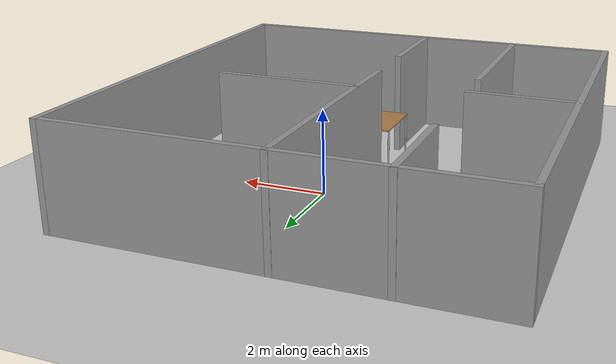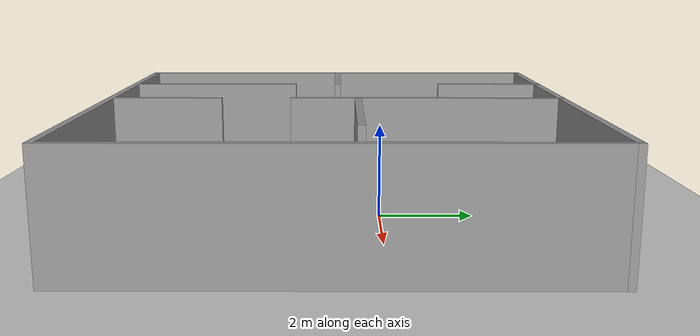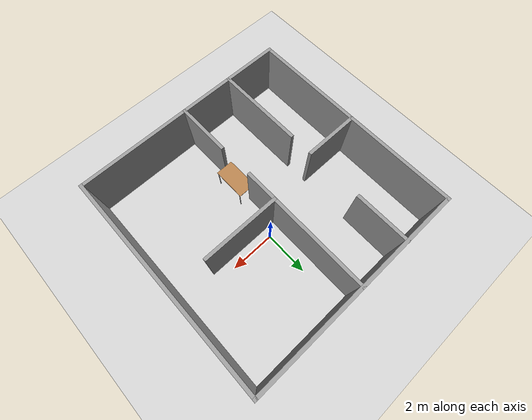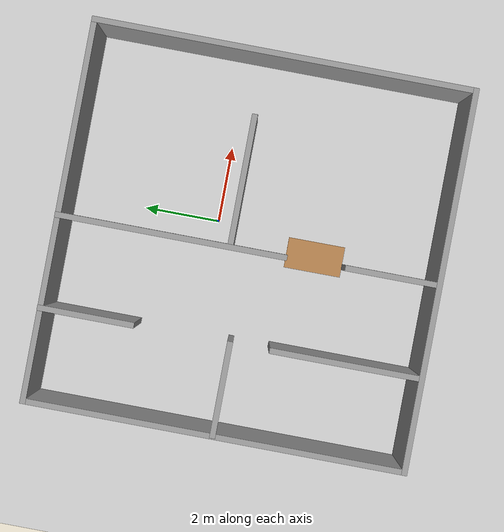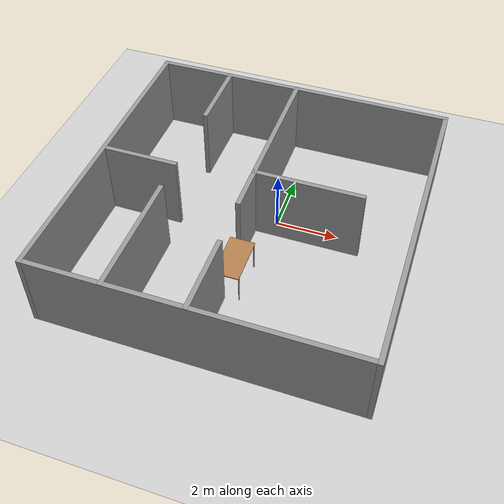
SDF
<sdf version="1.7">
 <world name="default">
  <light name="sun" type="directional">
   <cast_shadows>0</cast_shadows>
   <pose>0 0 10 0 -0 0</pose>
   <diffuse>0.8 0.8 0.8 1</diffuse>
   <specular>0.2 0.2 0.2 1</specular>
   <attenuation>
    <range>1000</range>
    <constant>0.9</constant>
    <linear>0.01</linear>
    <quadratic>0.001</quadratic>
   </attenuation>
   <direction>-0.5 0.1 -0.9</direction>
   <spot><inner_angle>0</inner_angle><outer_angle>0</outer_angle><falloff>0</falloff></spot>
  </light>
  <model name="ground_plane">
   <static>1</static>
   <link name="link1">
    <collision name="collision">
     <geometry><plane><normal>0 0 1</normal><size>100 100</size></plane></geometry>
     <surface><friction><ode><mu>100</mu><mu2>50</mu2></ode></friction></surface>
    </collision>
    <visual name="visual">
     <cast_shadows>0</cast_shadows>
     <geometry><plane><normal>0 0 1</normal><size>100 100</size></plane></geometry>
     <material>
      <script><uri>file://media/materials/scripts/gazebo.material</uri><name>Gazebo/Grey</name></script>
     </material>
    </visual>
   </link>
  </model>
  <gravity>0 0 -9.8</gravity>
  <magnetic_field>6e-06 2.3e-05 -4.2e-05</magnetic_field>
  <atmosphere type="adiabatic"/>
  <physics type="ode">
   <max_step_size>0.001</max_step_size>
   <real_time_factor>1</real_time_factor>
   <real_time_update_rate>1000</real_time_update_rate>
  </physics>
  <scene><ambient>0.4 0.4 0.4 1</ambient><background>0.7 0.7 0.7 1</background><shadows>1</shadows></scene>
  <audio><device>default</device></audio>
  <spherical_coordinates>
   <surface_model>EARTH_WGS84</surface_model>
   <latitude_deg>0</latitude_deg>
   <longitude_deg>0</longitude_deg>
   <elevation>0</elevation>
   <heading_deg>0</heading_deg>
  </spherical_coordinates>
  <model name="room_with_walls_10x10">
   <pose>-0.381584 -0.939162 0 0 -0 0</pose>
   <link name="Wall_1">
    <collision name="Wall_1_Collision">
     <geometry><box><size>10 0.15 2.5</size></box></geometry>
     <pose>0 0 1.25 0 -0 0</pose>
    </collision>
    <visual name="Wall_1_Visual">
     <pose>0 0 1.25 0 -0 0</pose>
     <geometry><box><size>10 0.15 2.5</size></box></geometry>
     <material>
      <script><uri>file://media/materials/scripts/gazebo.material</uri><name>Gazebo/Grey</name></script>
      <ambient>1 1 1 1</ambient>
     </material>
     <meta><layer>0</layer></meta>
    </visual>
    <pose>-0.119159 -4.92736 0 0 -0 0</pose>
   </link>
   <link name="Wall_11">
    <collision name="Wall_11_Collision">
     <geometry><box><size>2.5 0.15 2.5</size></box></geometry>
     <pose>0 0 1.25 0 -0 0</pose>
    </collision>
    <visual name="Wall_11_Visual">
     <pose>0 0 1.25 0 -0 0</pose>
     <geometry><box><size>2.5 0.15 2.5</size></box></geometry>
     <material>
      <script><uri>file://media/materials/scripts/gazebo.material</uri><name>Gazebo/Grey</name></script>
      <ambient>1 1 1 1</ambient>
     </material>
     <meta><layer>0</layer></meta>
    </visual>
    <pose>-2.64666 3.75236 0 0 -0 -1.5708</pose>
   </link>
   <link name="Wall_16">
    <collision name="Wall_16_Collision">
     <geometry><box><size>2.5 0.15 2.5</size></box></geometry>
     <pose>0 0 1.25 0 -0 0</pose>
    </collision>
    <visual name="Wall_16_Visual">
     <pose>0 0 1.25 0 -0 0</pose>
     <geometry><box><size>2.5 0.15 2.5</size></box></geometry>
     <material>
      <script><uri>file://media/materials/scripts/gazebo.material</uri><name>Gazebo/Grey</name></script>
      <ambient>1 1 1 1</ambient>
     </material>
     <meta><layer>0</layer></meta>
    </visual>
    <pose>-3.84066 0.028362 0 0 -0 0</pose>
   </link>
   <link name="Wall_18">
    <collision name="Wall_18_Collision">
     <geometry><box><size>4 0.15 2.5</size></box></geometry>
     <pose>0 0 1.25 0 -0 0</pose>
    </collision>
    <visual name="Wall_18_Visual">
     <pose>0 0 1.25 0 -0 0</pose>
     <geometry><box><size>4 0.15 2.5</size></box></geometry>
     <material>
      <script><uri>file://media/materials/scripts/gazebo.material</uri><name>Gazebo/Grey</name></script>
      <ambient>1 1 1 1</ambient>
     </material>
     <meta><layer>0</layer></meta>
    </visual>
    <pose>-2.63516 -2.99164 0 0 -0 1.5708</pose>
   </link>
   <link name="Wall_2">
    <collision name="Wall_2_Collision">
     <geometry><box><size>10 0.15 2.5</size></box></geometry>
     <pose>0 0 1.25 0 -0 0</pose>
    </collision>
    <visual name="Wall_2_Visual">
     <pose>0 0 1.25 0 -0 0</pose>
     <geometry><box><size>10 0.15 2.5</size></box></geometry>
     <material>
      <script><uri>file://media/materials/scripts/gazebo.material</uri><name>Gazebo/Grey</name></script>
      <ambient>1 1 1 1</ambient>
     </material>
     <meta><layer>0</layer></meta>
    </visual>
    <pose>4.80584 -0.002362 0 0 -0 1.5708</pose>
   </link>
   <link name="Wall_24">
    <collision name="Wall_24_Collision">
     <geometry><box><size>6 0.15 2.5</size></box></geometry>
     <pose>0 0 1.25 0 -0 0</pose>
    </collision>
    <visual name="Wall_24_Visual">
     <pose>0 0 1.25 0 -0 0</pose>
     <geometry><box><size>6 0.15 2.5</size></box></geometry>
     <material>
      <script><uri>file://media/materials/scripts/gazebo.material</uri><name>Gazebo/Grey</name></script>
      <ambient>1 1 1 1</ambient>
     </material>
     <meta><layer>0</layer></meta>
    </visual>
    <pose>-0.243157 2.00236 0 0 -0 -1.5708</pose>
   </link>
   <link name="Wall_28">
    <collision name="Wall_28_Collision">
     <geometry><box><size>2.5 0.15 2.5</size></box></geometry>
     <pose>0 0 1.25 0 -0 0</pose>
    </collision>
    <visual name="Wall_28_Visual">
     <pose>0 0 1.25 0 -0 0</pose>
     <geometry><box><size>2.5 0.15 2.5</size></box></geometry>
     <material>
      <script><uri>file://media/materials/scripts/gazebo.material</uri><name>Gazebo/Grey</name></script>
      <ambient>1 1 1 1</ambient>
     </material>
     <meta><layer>0</layer></meta>
    </visual>
    <pose>-0.220157 -3.74164 0 0 -0 1.5708</pose>
   </link>
   <link name="Wall_3">
    <collision name="Wall_3_Collision">
     <geometry><box><size>10 0.15 2.5</size></box></geometry>
     <pose>0 0 1.25 0 -0 0</pose>
    </collision>
    <visual name="Wall_3_Visual">
     <pose>0 0 1.25 0 -0 0</pose>
     <geometry><box><size>10 0.15 2.5</size></box></geometry>
     <material>
      <script><uri>file://media/materials/scripts/gazebo.material</uri><name>Gazebo/Grey</name></script>
      <ambient>1 1 1 1</ambient>
     </material>
     <meta><layer>0</layer></meta>
    </visual>
    <pose>-0.119159 4.92264 0 0 -0 3.14159</pose>
   </link>
   <link name="Wall_36">
    <collision name="Wall_36_Collision">
     <geometry><box><size>3.5 0.15 2.5</size></box></geometry>
     <pose>0 0 1.25 0 -0 0</pose>
    </collision>
    <visual name="Wall_36_Visual">
     <pose>0 0 1.25 0 -0 0</pose>
     <geometry><box><size>3.5 0.15 2.5</size></box></geometry>
     <material>
      <script><uri>file://media/materials/scripts/gazebo.material</uri><name>Gazebo/Grey</name></script>
      <ambient>1 1 1 1</ambient>
     </material>
     <meta><layer>0</layer></meta>
    </visual>
    <pose>1.44334 0.476862 0 0 -0 0</pose>
   </link>
   <link name="Wall_4">
    <collision name="Wall_4_Collision">
     <geometry><box><size>10 0.15 2.5</size></box></geometry>
     <pose>0 0 1.25 0 -0 0</pose>
    </collision>
    <visual name="Wall_4_Visual">
     <pose>0 0 1.25 0 -0 0</pose>
     <geometry><box><size>10 0.15 2.5</size></box></geometry>
     <material>
      <script><uri>file://media/materials/scripts/gazebo.material</uri><name>Gazebo/Grey</name></script>
      <ambient>1 1 1 1</ambient>
     </material>
     <meta><layer>0</layer></meta>
    </visual>
    <pose>-5.04416 -0.002362 0 0 -0 -1.5708</pose>
   </link>
   <static>1</static>
  </model>
  <model name="table">
   <static>1</static>
   <link name="link9">
    <collision name="surface">
     <pose>0 0 1 0 -0 0</pose>
     <geometry><box><size>1.5 0.8 0.03</size></box></geometry>
     <surface><friction><ode><mu>0.6</mu><mu2>0.6</mu2></ode></friction></surface>
    </collision>
    <visual name="visual1">
     <pose>0 0 1 0 -0 0</pose>
     <geometry><box><size>1.5 0.8 0.03</size></box></geometry>
     <material>
      <script><uri>file://media/materials/scripts/gazebo.material</uri><name>Gazebo/Wood</name></script>
     </material>
    </visual>
    <collision name="front_left_leg1">
     <pose>0.68 0.38 0.5 0 -0 0</pose>
     <geometry><cylinder><radius>0.02</radius><length>1</length></cylinder></geometry>
    </collision>
    <visual name="front_left_leg2">
     <pose>0.68 0.38 0.5 0 -0 0</pose>
     <geometry><cylinder><radius>0.02</radius><length>1</length></cylinder></geometry>
     <material>
      <script><uri>file://media/materials/scripts/gazebo.material</uri><name>Gazebo/Grey</name></script>
     </material>
    </visual>
    <collision name="front_right_leg3">
     <pose>0.68 -0.38 0.5 0 -0 0</pose>
     <geometry><cylinder><radius>0.02</radius><length>1</length></cylinder></geometry>
    </collision>
    <visual name="front_right_leg4">
     <pose>0.68 -0.38 0.5 0 -0 0</pose>
     <geometry><cylinder><radius>0.02</radius><length>1</length></cylinder></geometry>
     <material>
      <script><uri>file://media/materials/scripts/gazebo.material</uri><name>Gazebo/Grey</name></script>
     </material>
    </visual>
    <collision name="back_right_leg1">
     <pose>-0.68 -0.38 0.5 0 -0 0</pose>
     <geometry><cylinder><radius>0.02</radius><length>1</length></cylinder></geometry>
    </collision>
    <visual name="back_right_leg2">
     <pose>-0.68 -0.38 0.5 0 -0 0</pose>
     <geometry><cylinder><radius>0.02</radius><length>1</length></cylinder></geometry>
     <material>
      <script><uri>file://media/materials/scripts/gazebo.material</uri><name>Gazebo/Grey</name></script>
     </material>
    </visual>
    <collision name="back_left_leg1">
     <pose>-0.68 0.38 0.5 0 -0 0</pose>
     <geometry><cylinder><radius>0.02</radius><length>1</length></cylinder></geometry>
    </collision>
    <visual name="back_left_leg2">
     <pose>-0.68 0.38 0.5 0 -0 0</pose>
     <geometry><cylinder><radius>0.02</radius><length>1</length></cylinder></geometry>
     <material>
      <script><uri>file://media/materials/scripts/gazebo.material</uri><name>Gazebo/Grey</name></script>
     </material>
    </visual>
   </link>
   <pose>-0.4822 -2.68249 0 0 0 -1.56786</pose>
  </model>
 </world>
</sdf>
